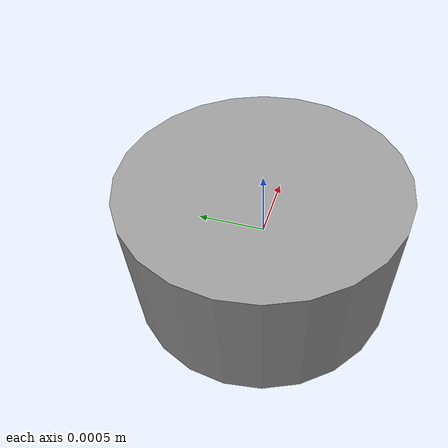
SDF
<?xml version='1.0'?>
<sdf version='1.7'>
  <model name='imu'>
    <link name='link_0'>
      <inertial>
        <mass>0.01</mass>
        <inertia>
          <ixx>6.409e-05</ixx>
          <ixy>0</ixy>
          <ixz>0</ixz>
          <iyy>6.409e-05</iyy>
          <iyz>0</iyz>
          <izz>5.593e-05</izz>
        </inertia>
        <pose>0 0 0 0 -0 0</pose>
      </inertial>
      <pose>0 0 0 0 -0 0</pose>
      <sensor name='my_imu' type='imu'>
        <always_on>1</always_on>
        <update_rate>30</update_rate>
        <plugin name='my_imu_plugin' filename='libgazebo_ros_imu_sensor.so'>
          <ros>
            <namespace>/imu</namespace>
            <argument>~/out:=data</argument>
          </ros>
        </plugin>
        <imu/>
      </sensor>
      <self_collide>0</self_collide>
      <enable_wind>0</enable_wind>
      <kinematic>0</kinematic>
      <gravity>1</gravity>
      <visual name='visual'>
        <pose>0 0 0 0 -0 0</pose>
        <geometry>
          <cylinder>
            <radius>0.001</radius>
            <length>0.001</length>
          </cylinder>
        </geometry>
        <material>
          <lighting>1</lighting>
          <script>
            <uri>file://media/materials/scripts/gazebo.material</uri>
            <name>Gazebo/Grey</name>
          </script>
          <shader type='pixel'>
            <normal_map>__default__</normal_map>
          </shader>
          <ambient>0.3 0.3 0.3 1</ambient>
          <diffuse>0.7 0.7 0.7 1</diffuse>
          <specular>0.01 0.01 0.01 1</specular>
          <emissive>0 0 0 1</emissive>
        </material>
        <transparency>0</transparency>
        <cast_shadows>1</cast_shadows>
      </visual>
      <collision name='collision'>
        <laser_retro>0</laser_retro>
        <max_contacts>10</max_contacts>
        <pose>0 0 0 0 -0 0</pose>
        <geometry>
          <cylinder>
            <radius>0.000</radius>
            <length>0.000</length>
          </cylinder>
        </geometry>
        <surface>
          <friction>
            <ode>
              <mu>1</mu>
              <mu2>1</mu2>
              <fdir1>0 0 0</fdir1>
              <slip1>0</slip1>
              <slip2>0</slip2>
            </ode>
            <torsional>
              <coefficient>1</coefficient>
              <patch_radius>0</patch_radius>
              <surface_radius>0</surface_radius>
              <use_patch_radius>1</use_patch_radius>
              <ode>
                <slip>0</slip>
              </ode>
            </torsional>
          </friction>
          <bounce>
            <restitution_coefficient>0</restitution_coefficient>
            <threshold>1e+06</threshold>
          </bounce>
          <contact>
            <collide_without_contact>0</collide_without_contact>
            <collide_without_contact_bitmask>1</collide_without_contact_bitmask>
            <collide_bitmask>1</collide_bitmask>
            <ode>
              <soft_cfm>0</soft_cfm>
              <soft_erp>0.2</soft_erp>
              <kp>1e+13</kp>
              <kd>1</kd>
              <max_vel>0.01</max_vel>
              <min_depth>0</min_depth>
            </ode>
            <bullet>
              <split_impulse>1</split_impulse>
              <split_impulse_penetration_threshold>-0.01</split_impulse_penetration_threshold>
              <soft_cfm>0</soft_cfm>
              <soft_erp>0.2</soft_erp>
              <kp>1e+13</kp>
              <kd>1</kd>
            </bullet>
          </contact>
        </surface>
      </collision>
    </link>
    <static>0</static>
    <allow_auto_disable>1</allow_auto_disable>
  </model>
</sdf>
